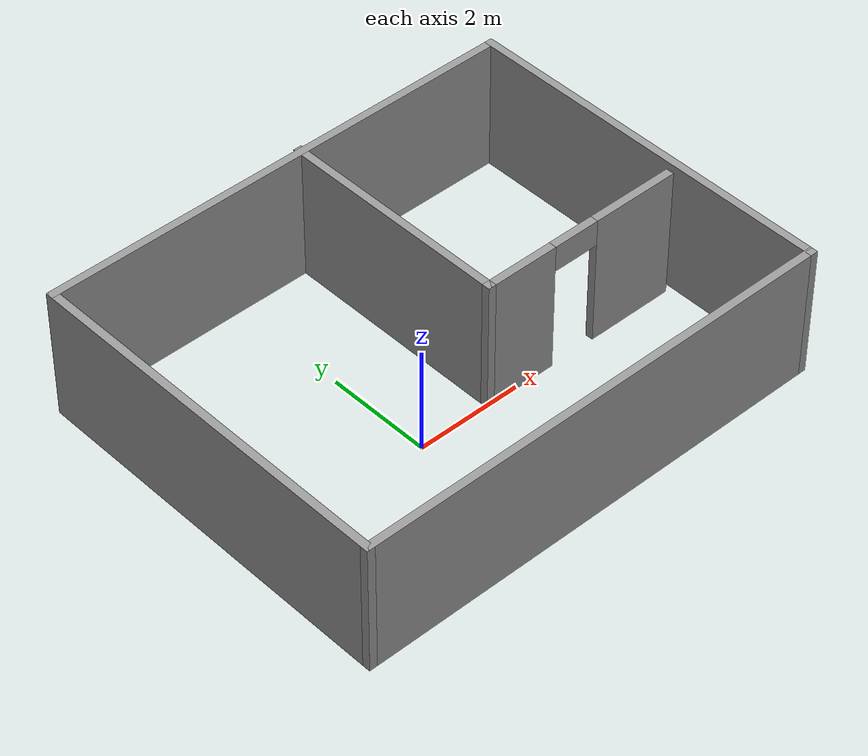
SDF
<?xml version='1.0'?>
<sdf version='1.7'>
  <model name='lab6_task1_world'>
    <pose>1 0.818494 0 0 -0 0</pose>
    <link name='Wall_0'>
      <collision name='Wall_0_Collision'>
        <geometry>
          <box>
            <size>7.25 0.15 2.5</size>
          </box>
        </geometry>
        <pose>0 0 1.25 0 -0 0</pose>
      </collision>
      <visual name='Wall_0_Visual'>
        <pose>0 0 1.25 0 -0 0</pose>
        <geometry>
          <box>
            <size>7.25 0.15 2.5</size>
          </box>
        </geometry>
        <material>
          <script>
            <uri>file://media/materials/scripts/gazebo.material</uri>
            <name>Gazebo/Grey</name>
          </script>
          <ambient>1 1 1 1</ambient>
        </material>
        <meta>
          <layer>0</layer>
        </meta>
      </visual>
      <pose>-4.55 -0.018494 0 0 -0 1.5708</pose>
    </link>
    <link name='Wall_12'>
      <collision name='Wall_12_Collision'>
        <geometry>
          <box>
            <size>4.5 0.15 2.5</size>
          </box>
        </geometry>
        <pose>0 0 1.25 0 -0 0</pose>
      </collision>
      <visual name='Wall_12_Visual'>
        <pose>0 0 1.25 0 -0 0</pose>
        <geometry>
          <box>
            <size>4.5 0.15 2.5</size>
          </box>
        </geometry>
        <material>
          <script>
            <uri>file://media/materials/scripts/gazebo.material</uri>
            <name>Gazebo/Grey</name>
          </script>
          <ambient>1 1 1 1</ambient>
        </material>
        <meta>
          <layer>0</layer>
        </meta>
      </visual>
      <pose>0.414899 1.39349 0 0 -0 1.5708</pose>
    </link>
    <link name='Wall_14'>
      <pose>2.3399 -0.781505 0 0 -0 0</pose>
      <visual name='Wall_14_Visual_0'>
        <pose>-1.29242 0 1.25 0 -0 0</pose>
        <geometry>
          <box>
            <size>1.41515 0.15 2.5</size>
          </box>
        </geometry>
        <material>
          <script>
            <uri>file://media/materials/scripts/gazebo.material</uri>
            <name>Gazebo/Grey</name>
          </script>
          <ambient>1 1 1 1</ambient>
        </material>
        <meta>
          <layer>0</layer>
        </meta>
      </visual>
      <collision name='Wall_14_Collision_0'>
        <geometry>
          <box>
            <size>1.41515 0.15 2.5</size>
          </box>
        </geometry>
        <pose>-1.29242 0 1.25 0 -0 0</pose>
      </collision>
      <visual name='Wall_14_Visual_1'>
        <pose>1.15758 0 1.25 0 -0 0</pose>
        <geometry>
          <box>
            <size>1.68485 0.15 2.5</size>
          </box>
        </geometry>
        <material>
          <script>
            <uri>file://media/materials/scripts/gazebo.material</uri>
            <name>Gazebo/Grey</name>
          </script>
          <ambient>1 1 1 1</ambient>
        </material>
        <meta>
          <layer>0</layer>
        </meta>
      </visual>
      <collision name='Wall_14_Collision_1'>
        <geometry>
          <box>
            <size>1.68485 0.15 2.5</size>
          </box>
        </geometry>
        <pose>1.15758 0 1.25 0 -0 0</pose>
      </collision>
      <visual name='Wall_14_Visual_2'>
        <pose>-0.134846 0 2.25 0 -0 0</pose>
        <geometry>
          <box>
            <size>0.9 0.15 0.5</size>
          </box>
        </geometry>
        <material>
          <script>
            <uri>file://media/materials/scripts/gazebo.material</uri>
            <name>Gazebo/Grey</name>
          </script>
          <ambient>1 1 1 1</ambient>
        </material>
        <meta>
          <layer>0</layer>
        </meta>
      </visual>
      <collision name='Wall_14_Collision_2'>
        <geometry>
          <box>
            <size>0.9 0.15 0.5</size>
          </box>
        </geometry>
        <pose>-0.134846 0 2.25 0 -0 0</pose>
      </collision>
    </link>
    <link name='Wall_3'>
      <collision name='Wall_3_Collision'>
        <geometry>
          <box>
            <size>9.25 0.15 2.5</size>
          </box>
        </geometry>
        <pose>0 0 1.25 0 -0 0</pose>
      </collision>
      <visual name='Wall_3_Visual'>
        <pose>0 0 1.25 0 -0 0</pose>
        <geometry>
          <box>
            <size>9.25 0.15 2.5</size>
          </box>
        </geometry>
        <material>
          <script>
            <uri>file://media/materials/scripts/gazebo.material</uri>
            <name>Gazebo/Grey</name>
          </script>
          <ambient>1 1 1 1</ambient>
        </material>
        <meta>
          <layer>0</layer>
        </meta>
      </visual>
      <pose>0 -3.56849 0 0 -0 0</pose>
    </link>
    <link name='Wall_4'>
      <collision name='Wall_4_Collision'>
        <geometry>
          <box>
            <size>7.25 0.15 2.5</size>
          </box>
        </geometry>
        <pose>0 0 1.25 0 -0 0</pose>
      </collision>
      <visual name='Wall_4_Visual'>
        <pose>0 0 1.25 0 -0 0</pose>
        <geometry>
          <box>
            <size>7.25 0.15 2.5</size>
          </box>
        </geometry>
        <material>
          <script>
            <uri>file://media/materials/scripts/gazebo.material</uri>
            <name>Gazebo/Grey</name>
          </script>
          <ambient>1 1 1 1</ambient>
        </material>
        <meta>
          <layer>0</layer>
        </meta>
      </visual>
      <pose>4.55 -0.018494 0 0 -0 1.5708</pose>
    </link>
    <link name='Wall_5'>
      <collision name='Wall_5_Collision'>
        <geometry>
          <box>
            <size>0.15 0.15 2.5</size>
          </box>
        </geometry>
        <pose>0 0 1.25 0 -0 0</pose>
      </collision>
      <visual name='Wall_5_Visual'>
        <pose>0 0 1.25 0 -0 0</pose>
        <geometry>
          <box>
            <size>0.15 0.15 2.5</size>
          </box>
        </geometry>
        <material>
          <script>
            <uri>file://media/materials/scripts/gazebo.material</uri>
            <name>Gazebo/Grey</name>
          </script>
          <ambient>1 1 1 1</ambient>
        </material>
        <meta>
          <layer>0</layer>
        </meta>
      </visual>
      <pose>4.55 3.53151 0 0 -0 0</pose>
    </link>
    <link name='Wall_8'>
      <collision name='Wall_8_Collision'>
        <geometry>
          <box>
            <size>0.15 0.15 2.5</size>
          </box>
        </geometry>
        <pose>0 0 1.25 0 -0 0</pose>
      </collision>
      <visual name='Wall_8_Visual'>
        <pose>0 0 1.25 0 -0 0</pose>
        <geometry>
          <box>
            <size>0.15 0.15 2.5</size>
          </box>
        </geometry>
        <material>
          <script>
            <uri>file://media/materials/scripts/gazebo.material</uri>
            <name>Gazebo/Grey</name>
          </script>
          <ambient>1 1 1 1</ambient>
        </material>
        <meta>
          <layer>0</layer>
        </meta>
      </visual>
      <pose>4.55 3.53151 0 0 -0 0</pose>
    </link>
    <link name='Wall_9'>
      <collision name='Wall_9_Collision'>
        <geometry>
          <box>
            <size>9.25 0.15 2.5</size>
          </box>
        </geometry>
        <pose>0 0 1.25 0 -0 0</pose>
      </collision>
      <visual name='Wall_9_Visual'>
        <pose>0 0 1.25 0 -0 0</pose>
        <geometry>
          <box>
            <size>9.25 0.15 2.5</size>
          </box>
        </geometry>
        <material>
          <script>
            <uri>file://media/materials/scripts/gazebo.material</uri>
            <name>Gazebo/Grey</name>
          </script>
          <ambient>1 1 1 1</ambient>
        </material>
        <meta>
          <layer>0</layer>
        </meta>
      </visual>
      <pose>0 3.53151 0 0 -0 3.14159</pose>
    </link>
    <static>1</static>
  </model>
</sdf>
